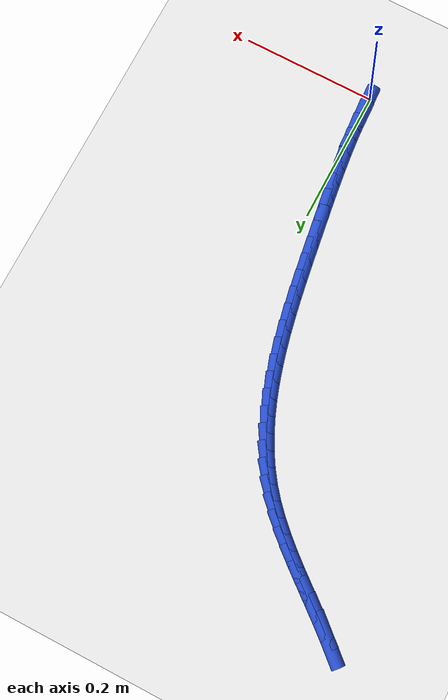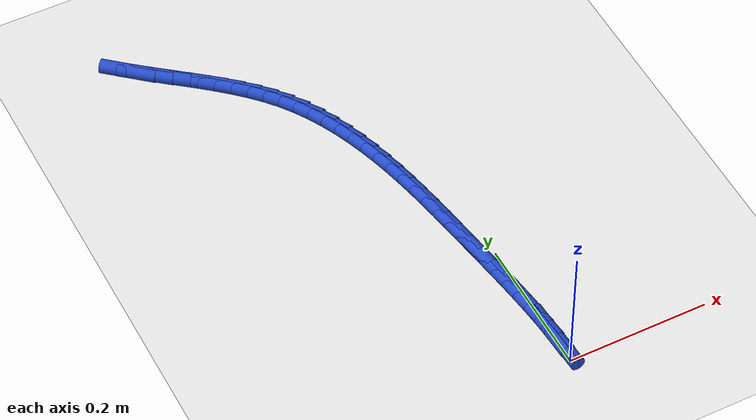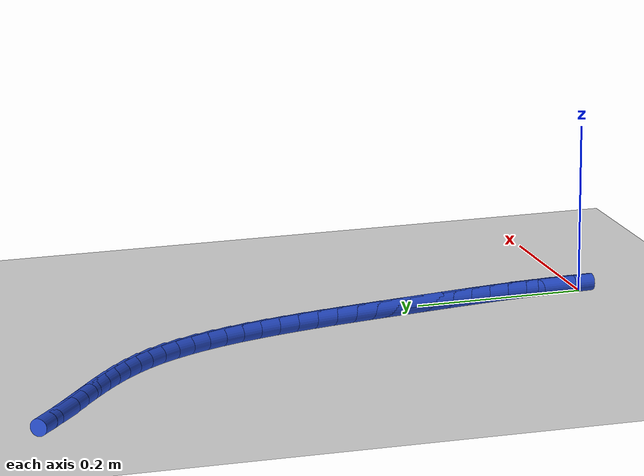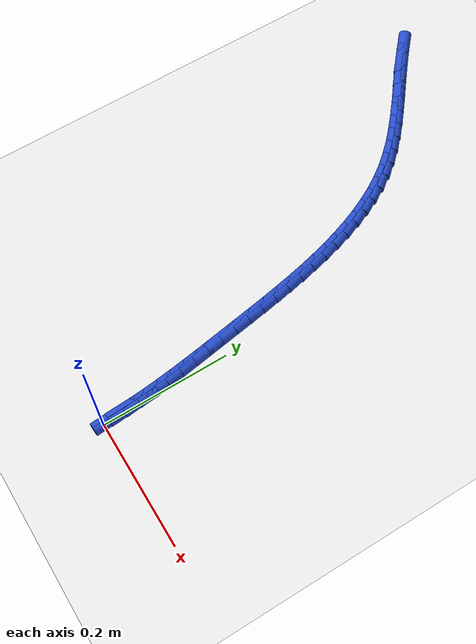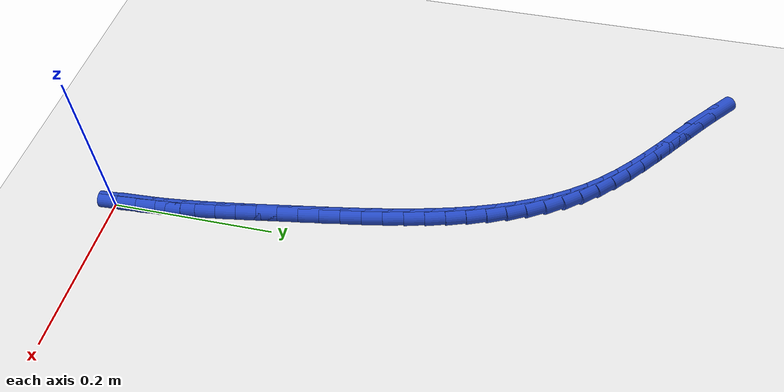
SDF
<sdf version="1.6">
 <world name="default">
  <model name="ground_plane">
   <static>1</static>
   <link name="link">
    <collision name="collision">
     <geometry><plane><normal>0 0 1</normal><size>100 100</size></plane></geometry>
     <surface><friction><ode><mu>100</mu><mu2>50</mu2></ode></friction></surface>
    </collision>
    <visual name="visual">
     <cast_shadows>0</cast_shadows>
     <geometry><plane><normal>0 0 1</normal><size>100 100</size></plane></geometry>
     <material>
      <script><uri>file://media/materials/scripts/gazebo.material</uri><name>Gazebo/WhiteGlow</name></script>
     </material>
    </visual>
   </link>
  </model>
  <model name="line">
   <link name="link_1">
    <pose>-0.0006937162261053146 0.024046349380320735 0.01 0 1.57 -1.512819999949289</pose>
    <collision name="collision">
     <geometry><cylinder><radius>0.01</radius><length>0.08</length></cylinder></geometry>
    </collision>
    <visual name="visual">
     <material>
      <script><name>Gazebo/Blue</name><uri>file://media/materials/scripts/gazebo.material</uri></script>
     </material>
     <geometry><cylinder><radius>0.01</radius><length>0.08</length></cylinder></geometry>
    </visual>
   </link>
   <link name="link_2">
    <pose>-0.0020873078101280047 0.04805666366629601 0.01 0 1.57 -1.48732274090152</pose>
    <collision name="collision">
     <geometry><cylinder><radius>0.01</radius><length>0.08</length></cylinder></geometry>
    </collision>
    <visual name="visual">
     <material>
      <script><name>Gazebo/Blue</name><uri>file://media/materials/scripts/gazebo.material</uri></script>
     </material>
     <geometry><cylinder><radius>0.01</radius><length>0.08</length></cylinder></geometry>
    </visual>
   </link>
   <link name="link_3">
    <pose>-0.004095669634511011 0.07206060439820915 0.01 0 1.57 -1.4655553132035113</pose>
    <collision name="collision">
     <geometry><cylinder><radius>0.01</radius><length>0.08</length></cylinder></geometry>
    </collision>
    <visual name="visual">
     <material>
      <script><name>Gazebo/Blue</name><uri>file://media/materials/scripts/gazebo.material</uri></script>
     </material>
     <geometry><cylinder><radius>0.01</radius><length>0.08</length></cylinder></geometry>
    </visual>
   </link>
   <link name="link_4">
    <pose>-0.0066336965816972925 0.09608783311634343 0.01 0 1.57 -1.4475632933500446</pose>
    <collision name="collision">
     <geometry><cylinder><radius>0.01</radius><length>0.08</length></cylinder></geometry>
    </collision>
    <visual name="visual">
     <material>
      <script><name>Gazebo/Blue</name><uri>file://media/materials/scripts/gazebo.material</uri></script>
     </material>
     <geometry><cylinder><radius>0.01</radius><length>0.08</length></cylinder></geometry>
    </visual>
   </link>
   <link name="link_5">
    <pose>-0.009616283534129813 0.1201680113609822 0.01 0 1.57 -1.4333547705873702</pose>
    <collision name="collision">
     <geometry><cylinder><radius>0.01</radius><length>0.08</length></cylinder></geometry>
    </collision>
    <visual name="visual">
     <material>
      <script><name>Gazebo/Blue</name><uri>file://media/materials/scripts/gazebo.material</uri></script>
     </material>
     <geometry><cylinder><radius>0.01</radius><length>0.08</length></cylinder></geometry>
    </visual>
   </link>
   <link name="link_6">
    <pose>-0.012958325374251534 0.1443308006724088 0.01 0 1.57 -1.4229083998762917</pose>
    <collision name="collision">
     <geometry><cylinder><radius>0.01</radius><length>0.08</length></cylinder></geometry>
    </collision>
    <visual name="visual">
     <material>
      <script><name>Gazebo/Blue</name><uri>file://media/materials/scripts/gazebo.material</uri></script>
     </material>
     <geometry><cylinder><radius>0.01</radius><length>0.08</length></cylinder></geometry>
    </visual>
   </link>
   <link name="link_7">
    <pose>-0.016574716984505404 0.16860586259090637 0.01 0 1.57 -1.4161801827466063</pose>
    <collision name="collision">
     <geometry><cylinder><radius>0.01</radius><length>0.08</length></cylinder></geometry>
    </collision>
    <visual name="visual">
     <material>
      <script><name>Gazebo/Blue</name><uri>file://media/materials/scripts/gazebo.material</uri></script>
     </material>
     <geometry><cylinder><radius>0.01</radius><length>0.08</length></cylinder></geometry>
    </visual>
   </link>
   <link name="link_8">
    <pose>-0.0203803532473344 0.19302285865675836 0.01 0 1.57 -1.4131087303598602</pose>
    <collision name="collision">
     <geometry><cylinder><radius>0.01</radius><length>0.08</length></cylinder></geometry>
    </collision>
    <visual name="visual">
     <material>
      <script><name>Gazebo/Blue</name><uri>file://media/materials/scripts/gazebo.material</uri></script>
     </material>
     <geometry><cylinder><radius>0.01</radius><length>0.08</length></cylinder></geometry>
    </visual>
   </link>
   <link name="link_9">
    <pose>-0.024290129045181463 0.21761145041024801 0.01 0 1.57 -1.4129529285050118</pose>
    <collision name="collision">
     <geometry><cylinder><radius>0.01</radius><length>0.08</length></cylinder></geometry>
    </collision>
    <visual name="visual">
     <material>
      <script><name>Gazebo/Blue</name><uri>file://media/materials/scripts/gazebo.material</uri></script>
     </material>
     <geometry><cylinder><radius>0.01</radius><length>0.08</length></cylinder></geometry>
    </visual>
   </link>
   <link name="link_10">
    <pose>-0.028234325391510363 0.24239161802522363 0.01 0 1.57 -1.4107768913329715</pose>
    <collision name="collision">
     <geometry><cylinder><radius>0.01</radius><length>0.08</length></cylinder></geometry>
    </collision>
    <visual name="visual">
     <material>
      <script><name>Gazebo/Blue</name><uri>file://media/materials/scripts/gazebo.material</uri></script>
     </material>
     <geometry><cylinder><radius>0.01</radius><length>0.08</length></cylinder></geometry>
    </visual>
   </link>
   <link name="link_11">
    <pose>-0.032256473338777486 0.26731208171259724 0.01 0 1.57 -1.4044299498013033</pose>
    <collision name="collision">
     <geometry><cylinder><radius>0.01</radius><length>0.08</length></cylinder></geometry>
    </collision>
    <visual name="visual">
     <material>
      <script><name>Gazebo/Blue</name><uri>file://media/materials/scripts/gazebo.material</uri></script>
     </material>
     <geometry><cylinder><radius>0.01</radius><length>0.08</length></cylinder></geometry>
    </visual>
   </link>
   <link name="link_12">
    <pose>-0.03645068229982774 0.2922897364219504 0.01 0 1.57 -1.3938943493233702</pose>
    <collision name="collision">
     <geometry><cylinder><radius>0.01</radius><length>0.08</length></cylinder></geometry>
    </collision>
    <visual name="visual">
     <material>
      <script><name>Gazebo/Blue</name><uri>file://media/materials/scripts/gazebo.material</uri></script>
     </material>
     <geometry><cylinder><radius>0.01</radius><length>0.08</length></cylinder></geometry>
    </visual>
   </link>
   <link name="link_13">
    <pose>-0.04091129641893349 0.3172413294035526 0.01 0 1.57 -1.379100509054995</pose>
    <collision name="collision">
     <geometry><cylinder><radius>0.01</radius><length>0.08</length></cylinder></geometry>
    </collision>
    <visual name="visual">
     <material>
      <script><name>Gazebo/Blue</name><uri>file://media/materials/scripts/gazebo.material</uri></script>
     </material>
     <geometry><cylinder><radius>0.01</radius><length>0.08</length></cylinder></geometry>
    </visual>
   </link>
   <link name="link_14">
    <pose>-0.04573265984036708 0.3420836079076735 0.01 0 1.57 -1.3599211486053158</pose>
    <collision name="collision">
     <geometry><cylinder><radius>0.01</radius><length>0.08</length></cylinder></geometry>
    </collision>
    <visual name="visual">
     <material>
      <script><name>Gazebo/Blue</name><uri>file://media/materials/scripts/gazebo.material</uri></script>
     </material>
     <geometry><cylinder><radius>0.01</radius><length>0.08</length></cylinder></geometry>
    </visual>
   </link>
   <link name="link_15">
    <pose>-0.051009116708400894 0.3667333191845827 0.01 0 1.57 -1.3361763557070856</pose>
    <collision name="collision">
     <geometry><cylinder><radius>0.01</radius><length>0.08</length></cylinder></geometry>
    </collision>
    <visual name="visual">
     <material>
      <script><name>Gazebo/Blue</name><uri>file://media/materials/scripts/gazebo.material</uri></script>
     </material>
     <geometry><cylinder><radius>0.01</radius><length>0.08</length></cylinder></geometry>
    </visual>
   </link>
   <link name="link_16">
    <pose>-0.05683501116730728 0.3911072104845499 0.01 0 1.57 -1.3076405448271664</pose>
    <collision name="collision">
     <geometry><cylinder><radius>0.01</radius><length>0.08</length></cylinder></geometry>
    </collision>
    <visual name="visual">
     <material>
      <script><name>Gazebo/Blue</name><uri>file://media/materials/scripts/gazebo.material</uri></script>
     </material>
     <geometry><cylinder><radius>0.01</radius><length>0.08</length></cylinder></geometry>
    </visual>
   </link>
   <link name="link_17">
    <pose>-0.06330468736135858 0.41512202905784457 0.01 0 1.57 -1.274052811666725</pose>
    <collision name="collision">
     <geometry><cylinder><radius>0.01</radius><length>0.08</length></cylinder></geometry>
    </collision>
    <visual name="visual">
     <material>
      <script><name>Gazebo/Blue</name><uri>file://media/materials/scripts/gazebo.material</uri></script>
     </material>
     <geometry><cylinder><radius>0.01</radius><length>0.08</length></cylinder></geometry>
    </visual>
   </link>
   <link name="link_18">
    <pose>-0.07051248943482716 0.43869452215473653 0.01 0 1.57 -1.2351326086215708</pose>
    <collision name="collision">
     <geometry><cylinder><radius>0.01</radius><length>0.08</length></cylinder></geometry>
    </collision>
    <visual name="visual">
     <material>
      <script><name>Gazebo/Blue</name><uri>file://media/materials/scripts/gazebo.material</uri></script>
     </material>
     <geometry><cylinder><radius>0.01</radius><length>0.08</length></cylinder></geometry>
    </visual>
   </link>
   <link name="link_19">
    <pose>-0.07855276153198539 0.4617414370254953 0.01 0 1.57 -1.1906030070549383</pose>
    <collision name="collision">
     <geometry><cylinder><radius>0.01</radius><length>0.08</length></cylinder></geometry>
    </collision>
    <visual name="visual">
     <material>
      <script><name>Gazebo/Blue</name><uri>file://media/materials/scripts/gazebo.material</uri></script>
     </material>
     <geometry><cylinder><radius>0.01</radius><length>0.08</length></cylinder></geometry>
    </visual>
   </link>
   <link name="link_20">
    <pose>-0.08751984779710562 0.4841795209203905 0.01 0 1.57 -1.1402238413276138</pose>
    <collision name="collision">
     <geometry><cylinder><radius>0.01</radius><length>0.08</length></cylinder></geometry>
    </collision>
    <visual name="visual">
     <material>
      <script><name>Gazebo/Blue</name><uri>file://media/materials/scripts/gazebo.material</uri></script>
     </material>
     <geometry><cylinder><radius>0.01</radius><length>0.08</length></cylinder></geometry>
    </visual>
   </link>
   <link name="link_21">
    <pose>-0.0975080923744602 0.5059255210896917 0.01 0 1.57 -1.0838363495774999</pose>
    <collision name="collision">
     <geometry><cylinder><radius>0.01</radius><length>0.08</length></cylinder></geometry>
    </collision>
    <visual name="visual">
     <material>
      <script><name>Gazebo/Blue</name><uri>file://media/materials/scripts/gazebo.material</uri></script>
     </material>
     <geometry><cylinder><radius>0.01</radius><length>0.08</length></cylinder></geometry>
    </visual>
   </link>
   <link name="link_22">
    <pose>-0.1086118394083215 0.5268961847836685 0.01 0 1.57 -1.021418997509908</pose>
    <collision name="collision">
     <geometry><cylinder><radius>0.01</radius><length>0.08</length></cylinder></geometry>
    </collision>
    <visual name="visual">
     <material>
      <script><name>Gazebo/Blue</name><uri>file://media/materials/scripts/gazebo.material</uri></script>
     </material>
     <geometry><cylinder><radius>0.01</radius><length>0.08</length></cylinder></geometry>
    </visual>
   </link>
   <link name="link_23">
    <pose>-0.12092543304296191 0.5470082592525907 0.01 0 1.57 -0.9531505050022364</pose>
    <collision name="collision">
     <geometry><cylinder><radius>0.01</radius><length>0.08</length></cylinder></geometry>
    </collision>
    <visual name="visual">
     <material>
      <script><name>Gazebo/Blue</name><uri>file://media/materials/scripts/gazebo.material</uri></script>
     </material>
     <geometry><cylinder><radius>0.01</radius><length>0.08</length></cylinder></geometry>
    </visual>
   </link>
   <link name="link_24">
    <pose>-0.13454321742265374 0.5661784917467279 0.01 0 1.57 -0.8811180825184841</pose>
    <collision name="collision">
     <geometry><cylinder><radius>0.01</radius><length>0.08</length></cylinder></geometry>
    </collision>
    <visual name="visual">
     <material>
      <script><name>Gazebo/Blue</name><uri>file://media/materials/scripts/gazebo.material</uri></script>
     </material>
     <geometry><cylinder><radius>0.01</radius><length>0.08</length></cylinder></geometry>
    </visual>
   </link>
   <link name="link_25">
    <pose>-0.14953015879634676 0.584348989343192 0.01 0 1.57 -0.8166576979792909</pose>
    <collision name="collision">
     <geometry><cylinder><radius>0.01</radius><length>0.08</length></cylinder></geometry>
    </collision>
    <visual name="visual">
     <material>
      <script><name>Gazebo/Blue</name><uri>file://media/materials/scripts/gazebo.material</uri></script>
     </material>
     <geometry><cylinder><radius>0.01</radius><length>0.08</length></cylinder></geometry>
    </visual>
   </link>
   <link name="link_26">
    <pose>-0.165760170861291 0.6016267810638343 0.01 0 1.57 -0.7643381814573068</pose>
    <collision name="collision">
     <geometry><cylinder><radius>0.01</radius><length>0.08</length></cylinder></geometry>
    </collision>
    <visual name="visual">
     <material>
      <script><name>Gazebo/Blue</name><uri>file://media/materials/scripts/gazebo.material</uri></script>
     </material>
     <geometry><cylinder><radius>0.01</radius><length>0.08</length></cylinder></geometry>
    </visual>
   </link>
   <link name="link_27">
    <pose>-0.1830307702176456 0.618184844056886 0.01 0 1.57 -0.7240153133828903</pose>
    <collision name="collision">
     <geometry><cylinder><radius>0.01</radius><length>0.08</length></cylinder></geometry>
    </collision>
    <visual name="visual">
     <material>
      <script><name>Gazebo/Blue</name><uri>file://media/materials/scripts/gazebo.material</uri></script>
     </material>
     <geometry><cylinder><radius>0.01</radius><length>0.08</length></cylinder></geometry>
    </visual>
   </link>
   <link name="link_28">
    <pose>-0.20113927200312362 0.6341963293786358 0.01 0 1.57 -0.6953139591990553</pose>
    <collision name="collision">
     <geometry><cylinder><radius>0.01</radius><length>0.08</length></cylinder></geometry>
    </collision>
    <visual name="visual">
     <material>
      <script><name>Gazebo/Blue</name><uri>file://media/materials/scripts/gazebo.material</uri></script>
     </material>
     <geometry><cylinder><radius>0.01</radius><length>0.08</length></cylinder></geometry>
    </visual>
   </link>
   <link name="link_29">
    <pose>-0.21988299135543846 0.6498343880853736 0.01 0 1.57 -0.677810780749041</pose>
    <collision name="collision">
     <geometry><cylinder><radius>0.01</radius><length>0.08</length></cylinder></geometry>
    </collision>
    <visual name="visual">
     <material>
      <script><name>Gazebo/Blue</name><uri>file://media/materials/scripts/gazebo.material</uri></script>
     </material>
     <geometry><cylinder><radius>0.01</radius><length>0.08</length></cylinder></geometry>
    </visual>
   </link>
   <link name="link_30">
    <pose>-0.23905924341230292 0.6652721712333888 0.01 0 1.57 -0.6711416945893081</pose>
    <collision name="collision">
     <geometry><cylinder><radius>0.01</radius><length>0.08</length></cylinder></geometry>
    </collision>
    <visual name="visual">
     <material>
      <script><name>Gazebo/Blue</name><uri>file://media/materials/scripts/gazebo.material</uri></script>
     </material>
     <geometry><cylinder><radius>0.01</radius><length>0.08</length></cylinder></geometry>
    </visual>
   </link>
   <link name="link_31">
    <pose>-0.2584653433114304 0.680682829878971 0.01 0 1.57 -0.6750569815832442</pose>
    <collision name="collision">
     <geometry><cylinder><radius>0.01</radius><length>0.08</length></cylinder></geometry>
    </collision>
    <visual name="visual">
     <material>
      <script><name>Gazebo/Blue</name><uri>file://media/materials/scripts/gazebo.material</uri></script>
     </material>
     <geometry><cylinder><radius>0.01</radius><length>0.08</length></cylinder></geometry>
    </visual>
   </link>
   <link name="link_32">
    <pose>-0.2778986061905339 0.6962395150784098 0.01 0 1.57 -0.689436163016285</pose>
    <collision name="collision">
     <geometry><cylinder><radius>0.01</radius><length>0.08</length></cylinder></geometry>
    </collision>
    <visual name="visual">
     <material>
      <script><name>Gazebo/Blue</name><uri>file://media/materials/scripts/gazebo.material</uri></script>
     </material>
     <geometry><cylinder><radius>0.01</radius><length>0.08</length></cylinder></geometry>
    </visual>
   </link>
   <link name="link_33">
    <pose>-0.2971563471873267 0.7121153778879944 0.01 0 1.57 -0.7140899568409086</pose>
    <collision name="collision">
     <geometry><cylinder><radius>0.01</radius><length>0.08</length></cylinder></geometry>
    </collision>
    <visual name="visual">
     <material>
      <script><name>Gazebo/Blue</name><uri>file://media/materials/scripts/gazebo.material</uri></script>
     </material>
     <geometry><cylinder><radius>0.01</radius><length>0.08</length></cylinder></geometry>
    </visual>
   </link>
   <link name="link_281">
    <pose>-0.0007146295567404858 0.024039207454754706 0.01 0 1.57 -1.50661231069658</pose>
    <collision name="collision">
     <geometry><cylinder><radius>0.01</radius><length>0.08</length></cylinder></geometry>
    </collision>
    <visual name="visual">
     <material>
      <script><name>Gazebo/Blue</name><uri>file://media/materials/scripts/gazebo.material</uri></script>
     </material>
     <geometry><cylinder><radius>0.01</radius><length>0.08</length></cylinder></geometry>
    </visual>
   </link>
   <link name="link_282">
    <pose>-0.0022546144552093566 0.04799952826176935 0.01 0 1.57 -1.523859229981941</pose>
    <collision name="collision">
     <geometry><cylinder><radius>0.01</radius><length>0.08</length></cylinder></geometry>
    </collision>
    <visual name="visual">
     <material>
      <script><name>Gazebo/Blue</name><uri>file://media/materials/scripts/gazebo.material</uri></script>
     </material>
     <geometry><cylinder><radius>0.01</radius><length>0.08</length></cylinder></geometry>
    </visual>
   </link>
  </model>
 </world>
</sdf>
